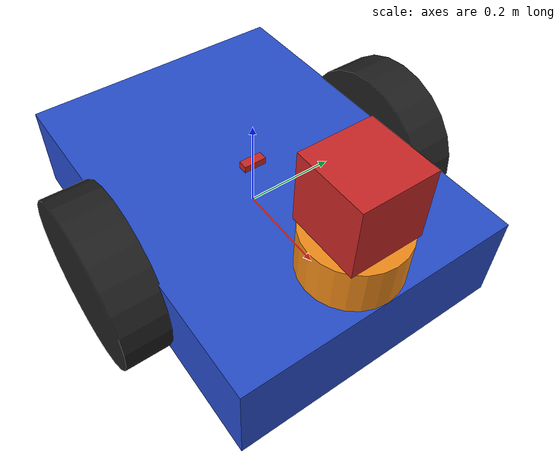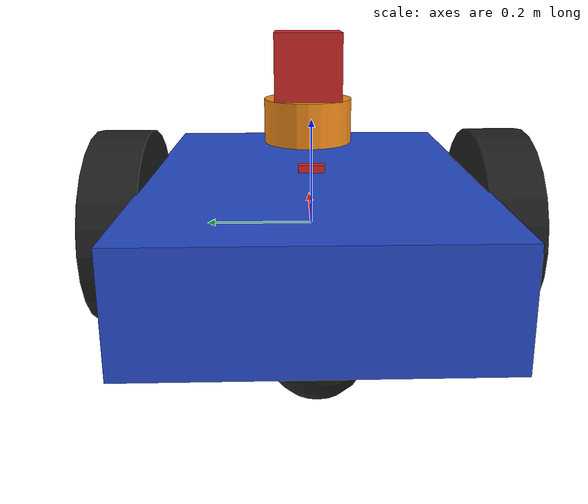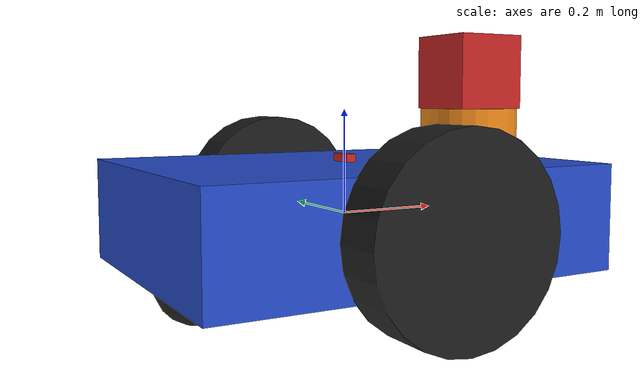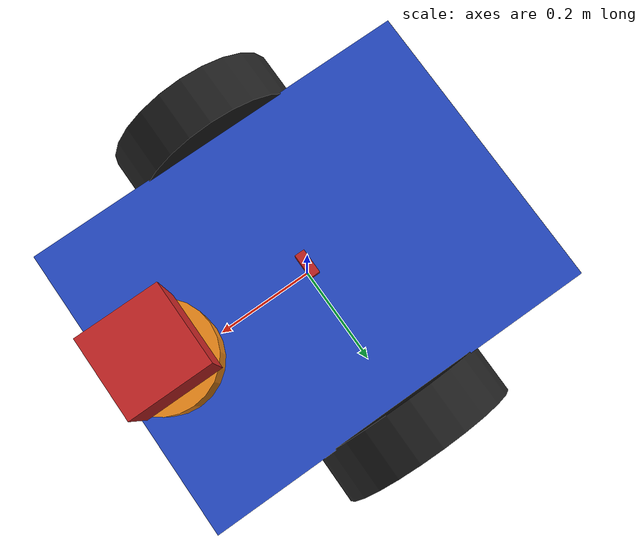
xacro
<?xml version="1.0"?>

<robot name="mybot" xmlns:xacro="http://www.ros.org/wiki/xacro">

	<xacro:property name="PI" value="3.1415926535897931" type="double"/>
	<xacro:property name="base_name" value="base_link"/>
	<xacro:property name="caster_front" value="caster_link_front"/>
	<xacro:property name="caster_back" value="caster_link_back"/>
	<xacro:property name="imu" value="imu_link"/>
	<xacro:property name="lidar" value="lidar_link"/>
	<xacro:property name="right_wheel" value="right_wheel_link"/>
	<xacro:property name="left_wheel" value="left_wheel_link"/>

	<xacro:property name="base_link_x" value="0.8" type="double"/>
	<xacro:property name="base_link_y" value="0.6" type="double"/>
	<xacro:property name="base_link_z" value="0.2" type="double"/>
	<xacro:property name="base_link_mass" value="2.0" type="double"/>
	<xacro:property name="caster_radius" value="0.08" type="double"/>
	<xacro:property name="caster_mass" value="1.0" type="double"/>

	<xacro:property name="imu_link_x" value="0.02" type="double"/>
	<xacro:property name="imu_link_y" value="0.05" type="double"/>
	<xacro:property name="imu_link_z" value="0.015" type="double"/>
	<xacro:property name="imu_link_mass" value="0.02"/>

	<xacro:property name="wheel_radius" value="${base_link_z/2+caster_radius}"/>
	<xacro:property name="wheel_width" value="0.1"/>
	<xacro:property name="wheel_mass" value="10.0"/>

	<xacro:property name="lidar_radius" value="0.1" type="double"/>
	<xacro:property name="lidar_width" value="0.1" type="double"/>
	<xacro:property name="lidar_mass" value="0.01" type="double"/>

	<xacro:property name="camera_link" value="0.15" type="double"/>

	<!-- Including the other files  -->
	<xacro:include filename="$(find diff_drive_robot)/urdf/diff_drive_robot.gazebo" />
	<xacro:include filename="$(find diff_drive_robot)/urdf/diff_drive_robot_materials.xacro" />
	<xacro:include filename="$(find diff_drive_robot)/urdf/diff_drive_robot_macros.xacro" />

		<!-- Base_link -->
	<link name="${base_name}">

		<!-- Base_link inertia properties-->
		<inertial>
			<origin xyz="0 0 0" rpy="0 0 0"/>
			<mass value="${base_link_mass}"/>
			<box_inertia m="${base_link_mass}" x="${base_link_x}" y="${base_link_y}" z="${base_link_z}"/>
		</inertial>

		<!-- Base_link collision properties-->
		<collision name="base_link_collision">
			<geometry>
				<box size= "${base_link_x} ${base_link_y} ${base_link_z}"/>
			</geometry>
		</collision>

		<!-- Base_link visual properties-->
		<visual name="base_link_visual">
			<origin xyz="0 0 0" rpy="0 0 0"/>
			<geometry>
				<box size= "${base_link_x} ${base_link_y} ${base_link_z}"/>
			</geometry>
		</visual>
	</link>

	<link name= "${caster_front}">
				<!-- caster wheel collision properties-->
		<collision name="caster_wheel_front_collision">
			<origin xyz="0 0 0" rpy="0 0 0"/>
			<geometry>
				<sphere radius="${caster_radius}"/>
			</geometry>
			<surface>
				<friction>
					<ode>
						<mu>0</mu>
						<mu2>0</mu2>
						<slip1>1.0</slip1>
						<slip2>1.0</slip2>
					</ode>
				</friction>
			</surface>
		</collision>

					<!-- Caster_wheel visual properties -->
		<visual name="caster_wheel_back">
			<origin xyz="0 0 0" rpy="0 0 0"/>
			<geometry>
				<sphere radius="${caster_radius}"/>
			</geometry>
		</visual>
	</link>

	<link name= "${caster_back}">
						<!-- caster wheel collision properties-->
		<collision name="caster_wheel_back_collision">
			<origin xyz="0 0 0" rpy="0 0 0"/>
			<geometry>
				<sphere radius="${caster_radius}"/>
			</geometry>
			<surface>
				<friction>
					<ode>
						<mu>0</mu>
						<mu2>0</mu2>
						<slip1>1.0</slip1>
						<slip2>1.0</slip2>
					</ode>
				</friction>
			</surface>
		</collision>

					<!-- Caster_wheel visual properties -->
		<visual name="caster_wheel_back">
			<origin xyz="0 0 0" rpy="0 0 0"/>
			<geometry>
				<sphere radius="${caster_radius}"/>
			</geometry>
		</visual>
	</link>

			<!-- Right_wheel link -->
	<link name="${right_wheel}">
		<!--origin xyz="0.1 -0.13 0.1" rpy="0 1.5707 1.5707"/-->
		<collision name="right_wheel_collision">
		  <origin xyz="0 0 0" rpy="0 1.5707 1.5707"/>
		  <geometry>
		    	<cylinder radius="${wheel_radius}" length="${wheel_width}"/>
		  </geometry>
		</collision>

		<!-- Right_wheel_visual properties-->
	    <visual >
	      <origin xyz="0 0 0" rpy="0 1.5707 1.5707"/>
	      <geometry>
	         	<cylinder radius="${wheel_radius}" length="${wheel_width}"/>
	      </geometry>
	    </visual>

		<!-- Right_wheel inertia properties -->
	    <inertial>
	      <origin xyz="0 0 0" rpy="0 1.5707 1.5707"/>
	      <mass value="${wheel_mass}"/>
		  <cylinder_inertia m="${wheel_mass}" r="${wheel_radius}" h="${wheel_width}"/>
		</inertial>
	</link>

		<!-- Left_wheel link -->
	<link name="${left_wheel}">

		<collision name="left_wheel_collision">
		  	<origin xyz="0 0 0" rpy="0 1.5707 1.5707"/>
				<geometry>
					<cylinder radius="${wheel_radius}" length="${wheel_width}"/>
				</geometry>
		</collision>

		<!-- Left_wheel_visual properties-->
		<visual >
		  	<origin xyz="0 0 0" rpy="0 1.5707 1.5707"/>
		  	<geometry>
		    	 <cylinder radius="${wheel_radius}" length="${wheel_width}"/>
		  	</geometry>
		</visual>

	<!-- Leftt_wheel inertia properties -->
		<inertial>
		  	<origin xyz="0 0 0" rpy="0 1.5707 1.5707"/>
		  	<mass value="${wheel_mass}"/>
		 	<cylinder_inertia m="${wheel_mass}" r="${wheel_radius}" h="${wheel_width}"/>
		</inertial>
	</link>

    		<!-- IMU link-->
	<link name="${imu}">

			<!-- Imu_link inertia properties-->
		<inertial>
			<origin xyz="0 0 0" rpy="0 0 0"/>
			<mass value="${imu_link_mass}"/>
			 <box_inertia m="${imu_link_mass}" x="${imu_link_x}" y="${imu_link_y}" z="${imu_link_z}"/>
		</inertial>

			<!-- Imu_link collision properties-->
		<collision name="imu_collision">
		 	<geometry>
			 	<box size="${imu_link_x} ${imu_link_y} ${imu_link_z} "/>
			</geometry>
		</collision>

			<!-- Imu_link visual properties-->
		<visual>
		 	<origin xyz="0 0 0 " rpy="0 0 0 "/>
			<geometry>
				<box size="${imu_link_x} ${imu_link_y} ${imu_link_z} "/>
			</geometry>
		</visual>
	</link>

  		<!-- Lidar link -->
	<link name="${lidar}">
	    <collision name="lidar_collision">
	      <origin xyz="0 0 0" rpy="0 0 0"/>
	      <geometry>
	        	<cylinder radius="${lidar_radius}" length="${lidar_width}"/>
	      </geometry>
	    </collision>

		<!-- Lidar properties-->
	    <visual >
	      <origin xyz="0 0 0" rpy="0 0 0"/>
	      <geometry>
	         <cylinder radius="${lidar_radius}" length="${lidar_radius}"/>
	      </geometry>
	    </visual>

		<!-- Lidar inertia properties -->
	    <inertial>
	      <origin xyz="0 0 0" rpy="0 0 0"/>
	      <mass value="${lidar_mass}"/>
	      <cylinder_inertia m="${lidar_mass}" r="${lidar_radius}" h="${lidar_width}"/>
	    </inertial>
	</link>

  		<!-- Right_wheel Joint -->
	<joint type="continuous" name="right_wheel_joint">
	    <origin xyz="0 -0.347 0" rpy="0 0 0"/>
	    <child link="${right_wheel}"/>
	    <parent link="${base_name}"/>
	    <axis xyz="0 1 0" rpy="0 0 0"/>
	    <limit effort="100" velocity="100"/>
	    <joint_properties damping="0.0" friction="0.0"/>
	</joint>

		<!-- Left_wheel Joint -->
	<joint type="continuous" name="left_wheel_joint">
	    <origin xyz="0 0.347 0" rpy="0 0 0"/>
	    <child link="${left_wheel}"/>
	    <parent link="${base_name}"/>
	    <axis xyz="0 1 0" rpy="0 0 0"/>
	    <limit effort="100" velocity="100"/>
	    <joint_properties damping="0.0" friction="0.0"/>
	</joint>

		<!-- Front_caster_joint -->
	<joint type="fixed" name="caster_front_joint">
	    <origin xyz="0.3 0 -0.1" rpy="0 0 0"/>
	    <child link="${caster_front}"/>
	    <parent link="${base_name}"/>
	</joint>

		<!-- Back_caster_joint -->
	<joint type="fixed" name="caster_back_joint">
	    <origin xyz="-0.3 0 -0.1" rpy="0 0 0"/>
	    <child link="${caster_back}"/>
	    <parent link="${base_name}"/>
	</joint>

    		<!-- Imu Joint -->
	<joint type="fixed" name="imu_joint">
	    <origin xyz="0 0 ${base_link_z/2+imu_link_z/2}" rpy="0 0 0"/>
	    <child link="${imu}"/>
	    <parent link="${base_name}"/>
	    <joint_properties damping="0.0" friction="0.0"/>
	</joint>

    		<!-- Lidar Joint -->
	<joint type="fixed" name="lidar_joint">
	    <origin xyz="0.3 0 ${base_link_z/2+lidar_radius/2}" rpy="0 0 0"/>
	    <child link="${lidar}"/>
	    <parent link="${base_name}"/>
	    <joint_properties damping="0.0" friction="0.0"/>
	</joint>

  <!-- Camera -->
	<joint name="camera_joint" type="fixed">
    <origin xyz="0 0 ${lidar_width/2+camera_link/2}" rpy="0 0 0"/>
    <parent link="${lidar}"/>
    <child link="camera_link"/>
  </joint>

  <link name="camera_link">
    <collision>
      <origin xyz="0 0 0" rpy="0 0 0"/>
      <geometry>
    		<box size="${camera_link} ${camera_link} ${camera_link}"/>
      </geometry>
    </collision>

    <visual>
      <origin xyz="0 0 0" rpy="0 0 0"/>
      <geometry>
    		<box size="${camera_link} ${camera_link} ${camera_link}"/>
      </geometry>
      <material name="red"/>
    </visual>

    <inertial>
      <mass value="1e-5" />
      <origin xyz="0 0 0" rpy="0 0 0"/>
      <inertia ixx="1e-6" ixy="0" ixz="0" iyy="1e-6" iyz="0" izz="1e-6" />
    </inertial>
  </link>

</robot>

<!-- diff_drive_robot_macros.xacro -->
<robot>
    <macro name="cylinder_inertia" params="m r h">
        <inertia  ixx="${m*(3*r*r+h*h)/12}" ixy = "0" ixz = "0"
                  iyy="${m*(3*r*r+h*h)/12}" iyz = "0"
                  izz="${m*r*r/2}" />
    </macro>

    <macro name="box_inertia" params="m x y z">
      <inertia  ixx="${m*(y*y+z*z)/12}" ixy = "0" ixz = "0"
                iyy="${m*(x*x+z*z)/12}" iyz = "0"
                izz="${m*(x*x+z*z)/12}" />
    </macro>

    <macro name="sphere_inertia" params="m r">
      <inertia  ixx="${2*m*r*r/5}" ixy = "0" ixz = "0"
                iyy="${2*m*r*r/5}" iyz = "0"
                izz="${2*m*r*r/5}" />
    </macro>

    <macro name="wheel" params="lr tY">

        <link name="${lr}_wheel">
            <collision>
                <origin xyz="0 0 0" rpy="0 ${PI/2} ${PI/2}" />
                  <geometry>
                      <cylinder length="${wheelWidth}" radius="${wheelRadius}"/>
                  </geometry>
            </collision>

            <visual>
                <origin xyz="0 0 0" rpy="0 ${PI/2} ${PI/2}" />
                 <geometry>
                    <cylinder length="${wheelWidth}" radius="${wheelRadius}"/>
                  </geometry>
                <material name="black"/>
            </visual>

            <inertial>
                <origin xyz="0 0 0" rpy="0 ${PI/2} ${PI/2}" />
                <mass value="${wheelMass}"/>
                <cylinder_inertia m="${wheelMass}" r="${wheelRadius}" h="${wheelWidth}"/>
            </inertial>
       </link>

        <gazebo reference="${lr}_wheel">
          <mu1 value="1.0"/>
          <mu2 value="1.0"/>
          <kp  value="10000000.0" />
          <kd  value="1.0" />
          <fdir1 value="1 0 0"/>
          <material>Gazebo/Black</material>
        </gazebo>

       <joint name="${lr}_wheel_hinge" type="continuous">
          <parent link="chassis"/>
          <child link="${lr}_wheel"/>
          <origin xyz="${+wheelPos-chassisLength/4} ${tY*wheelWidth/2+tY*chassisWidth/2} ${wheelRadius}" rpy="0 0 0" />
          <axis xyz="0 1 0" rpy="0 0 0" />
          <limit effort="100" velocity="100"/>
          <joint_properties damping="0.0" friction="0.0"/>
        </joint>

        <transmission name="${lr}_trans">
          <type>transmission_interface/SimpleTransmission</type>
          <joint name="${lr}_wheel_hinge"/>
          <actuator name="${lr}Motor">
              <hardwareInterface>EffortJointInterface</hardwareInterface>
              <mechanicalReduction>10</mechanicalReduction>
          </actuator>
        </transmission>

    </macro>

</robot>
